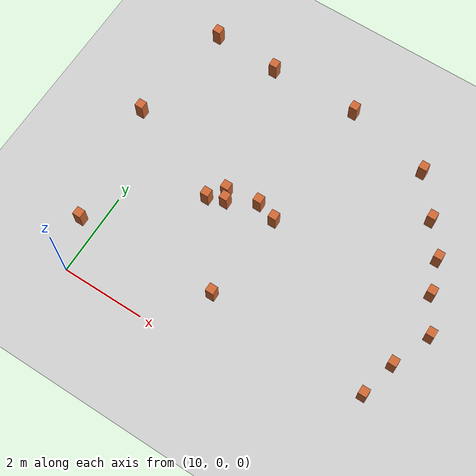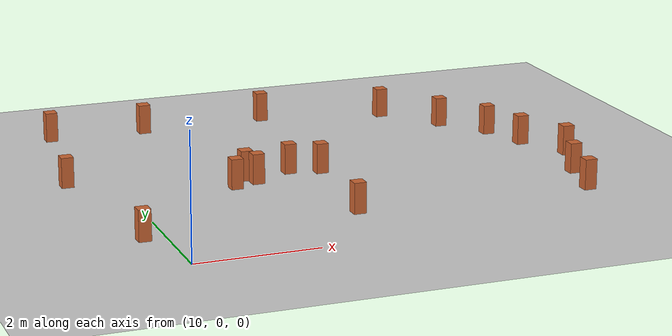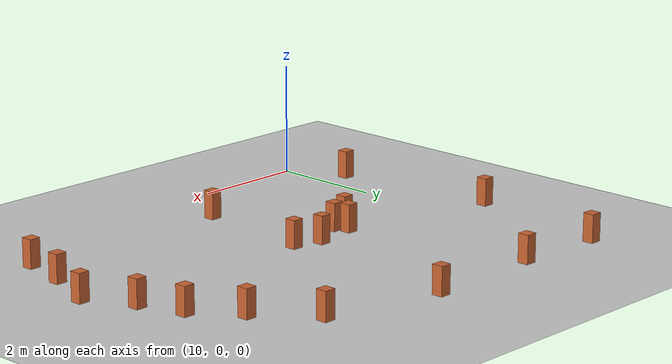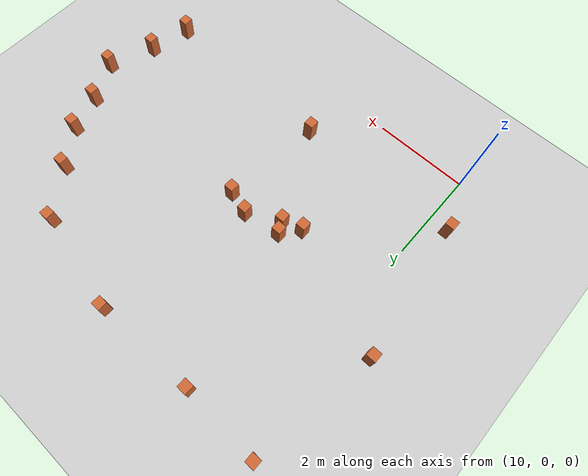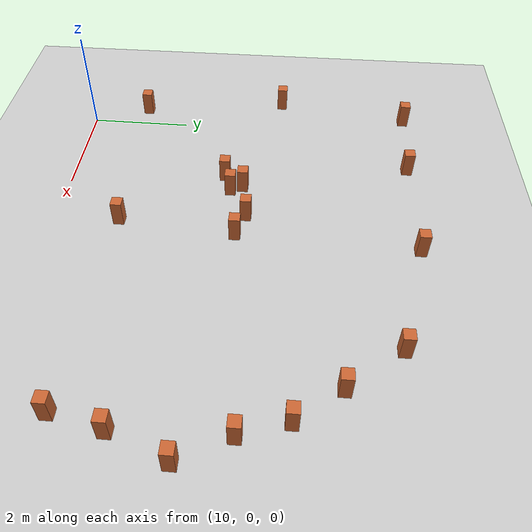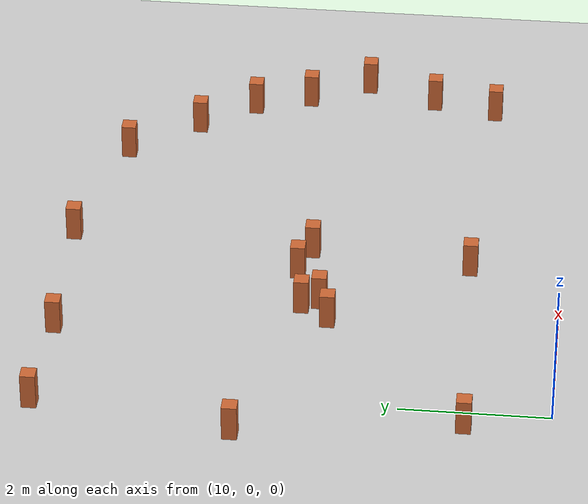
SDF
<sdf version="1.9">
 <world name="default">
  <model name="ground_plane">
   <static>true</static>
   <link name="link">
    <collision name="collision">
     <geometry><plane><normal>0 0 1</normal><size>100 100</size></plane></geometry>
     <surface><friction><ode><mu>100</mu><mu2>50</mu2></ode></friction></surface>
    </collision>
    <visual name="visual">
     <cast_shadows>false</cast_shadows>
     <geometry><plane><normal>0 0 1</normal><size>100 100</size></plane></geometry>
     <material>
      <ambient>0.6 0.6 0.6 1</ambient>
      <diffuse>0.8 0.8 0.8 1</diffuse>
      <specular>0.1 0.1 0.1 1</specular>
     </material>
    </visual>
    <inertial>
     <mass>1</mass>
     <inertia><ixx>1</ixx><ixy>0</ixy><ixz>0</ixz><iyy>1</iyy><iyz>0</iyz><izz>1</izz></inertia>
    </inertial>
   </link>
  </model>
  <model name="wood_cube_10cm_clone_0_clone_4_44_5">
   <link name="link">
    <pose>0 0 0.05 0 -0 0</pose>
    <inertial>
     <mass>0.51670000000000005</mass>
     <inertia>
      <ixx>0.00086116700000000003</ixx>
      <ixy>0</ixy>
      <ixz>0</ixz>
      <iyy>0.00086116700000000003</iyy>
      <iyz>0</iyz>
      <izz>0.00086116700000000003</izz>
     </inertia>
    </inertial>
    <collision name="collision">
     <geometry><box><size>0.2 0.2 0.5</size></box></geometry>
     <surface>
      <contact>
       <poissons_ratio>0.34699999999999998</poissons_ratio>
       <elastic_modulus>8800000000</elastic_modulus>
       <ode><kp>100000</kp><kd>100</kd><max_vel>100</max_vel><min_depth>0.001</min_depth></ode>
      </contact>
      <friction>
       <torsional>
        <coefficient>1</coefficient>
        <use_patch_radius>false</use_patch_radius>
        <surface_radius>0.01</surface_radius>
       </torsional>
      </friction>
     </surface>
    </collision>
    <visual name="visual">
     <geometry><box><size>0.2 0.2 0.5</size></box></geometry>
     <material>
      <ambient>0.6 0.3 0.1 1</ambient>
      <diffuse>0.8 0.4 0.2 1</diffuse>
      <specular>0.1 0.1 0.1 1</specular>
     </material>
    </visual>
   </link>
   <pose>9.60962 1.1263 0.249999 0 -0 0</pose>
   <static>false</static>
  </model>
  <model name="wood_cube_10cm_clone_0_clone_4_44_18">
   <link name="link">
    <pose>0 0 0.05 0 -0 0</pose>
    <inertial>
     <mass>0.51670000000000005</mass>
     <inertia>
      <ixx>0.00086116700000000003</ixx>
      <ixy>0</ixy>
      <ixz>0</ixz>
      <iyy>0.00086116700000000003</iyy>
      <iyz>0</iyz>
      <izz>0.00086116700000000003</izz>
     </inertia>
    </inertial>
    <collision name="collision">
     <geometry><box><size>0.2 0.2 0.5</size></box></geometry>
     <surface>
      <contact>
       <poissons_ratio>0.34699999999999998</poissons_ratio>
       <elastic_modulus>8800000000</elastic_modulus>
       <ode><kp>100000</kp><kd>100</kd><max_vel>100</max_vel><min_depth>0.001</min_depth></ode>
      </contact>
      <friction>
       <torsional>
        <coefficient>1</coefficient>
        <use_patch_radius>false</use_patch_radius>
        <surface_radius>0.01</surface_radius>
       </torsional>
      </friction>
     </surface>
    </collision>
    <visual name="visual">
     <geometry><box><size>0.2 0.2 0.5</size></box></geometry>
     <material>
      <ambient>0.6 0.3 0.1 1</ambient>
      <diffuse>0.8 0.4 0.2 1</diffuse>
      <specular>0.1 0.1 0.1 1</specular>
     </material>
    </visual>
   </link>
   <pose>9.6054 6.72716 0.249999 0 -0 0</pose>
   <static>false</static>
  </model>
  <model name="wood_cube_10cm_clone_0_clone_4_44_19">
   <link name="link">
    <pose>0 0 0.05 0 -0 0</pose>
    <inertial>
     <mass>0.51670000000000005</mass>
     <inertia>
      <ixx>0.00086116700000000003</ixx>
      <ixy>0</ixy>
      <ixz>0</ixz>
      <iyy>0.00086116700000000003</iyy>
      <iyz>0</iyz>
      <izz>0.00086116700000000003</izz>
     </inertia>
    </inertial>
    <collision name="collision">
     <geometry><box><size>0.2 0.2 0.5</size></box></geometry>
     <surface>
      <contact>
       <poissons_ratio>0.34699999999999998</poissons_ratio>
       <elastic_modulus>8800000000</elastic_modulus>
       <ode><kp>100000</kp><kd>100</kd><max_vel>100</max_vel><min_depth>0.001</min_depth></ode>
      </contact>
      <friction>
       <torsional>
        <coefficient>1</coefficient>
        <use_patch_radius>false</use_patch_radius>
        <surface_radius>0.01</surface_radius>
       </torsional>
      </friction>
     </surface>
    </collision>
    <visual name="visual">
     <geometry><box><size>0.2 0.2 0.5</size></box></geometry>
     <material>
      <ambient>0.6 0.3 0.1 1</ambient>
      <diffuse>0.8 0.4 0.2 1</diffuse>
      <specular>0.1 0.1 0.1 1</specular>
     </material>
    </visual>
   </link>
   <pose>11.2341 6.66289 0.249999 0 -0 0</pose>
   <static>false</static>
  </model>
  <model name="wood_cube_10cm_clone_0_clone_4_44_20">
   <link name="link">
    <pose>0 0 0.05 0 -0 0</pose>
    <inertial>
     <mass>0.51670000000000005</mass>
     <inertia>
      <ixx>0.00086116700000000003</ixx>
      <ixy>0</ixy>
      <ixz>0</ixz>
      <iyy>0.00086116700000000003</iyy>
      <iyz>0</iyz>
      <izz>0.00086116700000000003</izz>
     </inertia>
    </inertial>
    <collision name="collision">
     <geometry><box><size>0.2 0.2 0.5</size></box></geometry>
     <surface>
      <contact>
       <poissons_ratio>0.34699999999999998</poissons_ratio>
       <elastic_modulus>8800000000</elastic_modulus>
       <ode><kp>100000</kp><kd>100</kd><max_vel>100</max_vel><min_depth>0.001</min_depth></ode>
      </contact>
      <friction>
       <torsional>
        <coefficient>1</coefficient>
        <use_patch_radius>false</use_patch_radius>
        <surface_radius>0.01</surface_radius>
       </torsional>
      </friction>
     </surface>
    </collision>
    <visual name="visual">
     <geometry><box><size>0.2 0.2 0.5</size></box></geometry>
     <material>
      <ambient>0.6 0.3 0.1 1</ambient>
      <diffuse>0.8 0.4 0.2 1</diffuse>
      <specular>0.1 0.1 0.1 1</specular>
     </material>
    </visual>
   </link>
   <pose>13.394 6.71062 0.249999 0 -0 0</pose>
   <static>false</static>
  </model>
  <model name="wood_cube_10cm_clone_0_clone_4_44_21">
   <link name="link">
    <pose>0 0 0.05 0 -0 0</pose>
    <inertial>
     <mass>0.51670000000000005</mass>
     <inertia>
      <ixx>0.00086116700000000003</ixx>
      <ixy>0</ixy>
      <ixz>0</ixz>
      <iyy>0.00086116700000000003</iyy>
      <iyz>0</iyz>
      <izz>0.00086116700000000003</izz>
     </inertia>
    </inertial>
    <collision name="collision">
     <geometry><box><size>0.2 0.2 0.5</size></box></geometry>
     <surface>
      <contact>
       <poissons_ratio>0.34699999999999998</poissons_ratio>
       <elastic_modulus>8800000000</elastic_modulus>
       <ode><kp>100000</kp><kd>100</kd><max_vel>100</max_vel><min_depth>0.001</min_depth></ode>
      </contact>
      <friction>
       <torsional>
        <coefficient>1</coefficient>
        <use_patch_radius>false</use_patch_radius>
        <surface_radius>0.01</surface_radius>
       </torsional>
      </friction>
     </surface>
    </collision>
    <visual name="visual">
     <geometry><box><size>0.2 0.2 0.5</size></box></geometry>
     <material>
      <ambient>0.6 0.3 0.1 1</ambient>
      <diffuse>0.8 0.4 0.2 1</diffuse>
      <specular>0.1 0.1 0.1 1</specular>
     </material>
    </visual>
   </link>
   <pose>15.4845 6.23157 0.249999 0 -0 0</pose>
   <static>false</static>
  </model>
  <model name="wood_cube_10cm_clone_0_clone_4_44_22">
   <link name="link">
    <pose>0 0 0.05 0 -0 0</pose>
    <inertial>
     <mass>0.51670000000000005</mass>
     <inertia>
      <ixx>0.00086116700000000003</ixx>
      <ixy>0</ixy>
      <ixz>0</ixz>
      <iyy>0.00086116700000000003</iyy>
      <iyz>0</iyz>
      <izz>0.00086116700000000003</izz>
     </inertia>
    </inertial>
    <collision name="collision">
     <geometry><box><size>0.2 0.2 0.5</size></box></geometry>
     <surface>
      <contact>
       <poissons_ratio>0.34699999999999998</poissons_ratio>
       <elastic_modulus>8800000000</elastic_modulus>
       <ode><kp>100000</kp><kd>100</kd><max_vel>100</max_vel><min_depth>0.001</min_depth></ode>
      </contact>
      <friction>
       <torsional>
        <coefficient>1</coefficient>
        <use_patch_radius>false</use_patch_radius>
        <surface_radius>0.01</surface_radius>
       </torsional>
      </friction>
     </surface>
    </collision>
    <visual name="visual">
     <geometry><box><size>0.2 0.2 0.5</size></box></geometry>
     <material>
      <ambient>0.6 0.3 0.1 1</ambient>
      <diffuse>0.8 0.4 0.2 1</diffuse>
      <specular>0.1 0.1 0.1 1</specular>
     </material>
    </visual>
   </link>
   <pose>16.223 5.29784 0.249999 -0 0 -0</pose>
   <static>false</static>
  </model>
  <model name="wood_cube_10cm_clone_0_clone_4_44_23">
   <link name="link">
    <pose>0 0 0.05 0 -0 0</pose>
    <inertial>
     <mass>0.51670000000000005</mass>
     <inertia>
      <ixx>0.00086116700000000003</ixx>
      <ixy>0</ixy>
      <ixz>0</ixz>
      <iyy>0.00086116700000000003</iyy>
      <iyz>0</iyz>
      <izz>0.00086116700000000003</izz>
     </inertia>
    </inertial>
    <collision name="collision">
     <geometry><box><size>0.2 0.2 0.5</size></box></geometry>
     <surface>
      <contact>
       <poissons_ratio>0.34699999999999998</poissons_ratio>
       <elastic_modulus>8800000000</elastic_modulus>
       <ode><kp>100000</kp><kd>100</kd><max_vel>100</max_vel><min_depth>0.001</min_depth></ode>
      </contact>
      <friction>
       <torsional>
        <coefficient>1</coefficient>
        <use_patch_radius>false</use_patch_radius>
        <surface_radius>0.01</surface_radius>
       </torsional>
      </friction>
     </surface>
    </collision>
    <visual name="visual">
     <geometry><box><size>0.2 0.2 0.5</size></box></geometry>
     <material>
      <ambient>0.6 0.3 0.1 1</ambient>
      <diffuse>0.8 0.4 0.2 1</diffuse>
      <specular>0.1 0.1 0.1 1</specular>
     </material>
    </visual>
   </link>
   <pose>16.7938 4.54819 0.249999 -0 0 -0</pose>
   <static>false</static>
  </model>
  <model name="wood_cube_10cm_clone_0_clone_4_44_24">
   <link name="link">
    <pose>0 0 0.05 0 -0 0</pose>
    <inertial>
     <mass>0.51670000000000005</mass>
     <inertia>
      <ixx>0.00086116700000000003</ixx>
      <ixy>0</ixy>
      <ixz>0</ixz>
      <iyy>0.00086116700000000003</iyy>
      <iyz>0</iyz>
      <izz>0.00086116700000000003</izz>
     </inertia>
    </inertial>
    <collision name="collision">
     <geometry><box><size>0.2 0.2 0.5</size></box></geometry>
     <surface>
      <contact>
       <poissons_ratio>0.34699999999999998</poissons_ratio>
       <elastic_modulus>8800000000</elastic_modulus>
       <ode><kp>100000</kp><kd>100</kd><max_vel>100</max_vel><min_depth>0.001</min_depth></ode>
      </contact>
      <friction>
       <torsional>
        <coefficient>1</coefficient>
        <use_patch_radius>false</use_patch_radius>
        <surface_radius>0.01</surface_radius>
       </torsional>
      </friction>
     </surface>
    </collision>
    <visual name="visual">
     <geometry><box><size>0.2 0.2 0.5</size></box></geometry>
     <material>
      <ambient>0.6 0.3 0.1 1</ambient>
      <diffuse>0.8 0.4 0.2 1</diffuse>
      <specular>0.1 0.1 0.1 1</specular>
     </material>
    </visual>
   </link>
   <pose>17.0598 3.77017 0.249999 -0 0 -0</pose>
   <static>false</static>
  </model>
  <model name="wood_cube_10cm_clone_0_clone_4_44_25">
   <link name="link">
    <pose>0 0 0.05 0 -0 0</pose>
    <inertial>
     <mass>0.51670000000000005</mass>
     <inertia>
      <ixx>0.00086116700000000003</ixx>
      <ixy>0</ixy>
      <ixz>0</ixz>
      <iyy>0.00086116700000000003</iyy>
      <iyz>0</iyz>
      <izz>0.00086116700000000003</izz>
     </inertia>
    </inertial>
    <collision name="collision">
     <geometry><box><size>0.2 0.2 0.5</size></box></geometry>
     <surface>
      <contact>
       <poissons_ratio>0.34699999999999998</poissons_ratio>
       <elastic_modulus>8800000000</elastic_modulus>
       <ode><kp>100000</kp><kd>100</kd><max_vel>100</max_vel><min_depth>0.001</min_depth></ode>
      </contact>
      <friction>
       <torsional>
        <coefficient>1</coefficient>
        <use_patch_radius>false</use_patch_radius>
        <surface_radius>0.01</surface_radius>
       </torsional>
      </friction>
     </surface>
    </collision>
    <visual name="visual">
     <geometry><box><size>0.2 0.2 0.5</size></box></geometry>
     <material>
      <ambient>0.6 0.3 0.1 1</ambient>
      <diffuse>0.8 0.4 0.2 1</diffuse>
      <specular>0.1 0.1 0.1 1</specular>
     </material>
    </visual>
   </link>
   <pose>17.4948 2.94217 0.249999 -0 0 -0</pose>
   <static>false</static>
  </model>
  <model name="wood_cube_10cm_clone_0_clone_4_44_26">
   <link name="link">
    <pose>0 0 0.05 0 -0 0</pose>
    <inertial>
     <mass>0.51670000000000005</mass>
     <inertia>
      <ixx>0.00086116700000000003</ixx>
      <ixy>0</ixy>
      <ixz>0</ixz>
      <iyy>0.00086116700000000003</iyy>
      <iyz>0</iyz>
      <izz>0.00086116700000000003</izz>
     </inertia>
    </inertial>
    <collision name="collision">
     <geometry><box><size>0.2 0.2 0.5</size></box></geometry>
     <surface>
      <contact>
       <poissons_ratio>0.34699999999999998</poissons_ratio>
       <elastic_modulus>8800000000</elastic_modulus>
       <ode><kp>100000</kp><kd>100</kd><max_vel>100</max_vel><min_depth>0.001</min_depth></ode>
      </contact>
      <friction>
       <torsional>
        <coefficient>1</coefficient>
        <use_patch_radius>false</use_patch_radius>
        <surface_radius>0.01</surface_radius>
       </torsional>
      </friction>
     </surface>
    </collision>
    <visual name="visual">
     <geometry><box><size>0.2 0.2 0.5</size></box></geometry>
     <material>
      <ambient>0.6 0.3 0.1 1</ambient>
      <diffuse>0.8 0.4 0.2 1</diffuse>
      <specular>0.1 0.1 0.1 1</specular>
     </material>
    </visual>
   </link>
   <pose>17.1302 1.9701 0.249999 -0 0 -0</pose>
   <static>false</static>
  </model>
  <model name="wood_cube_10cm_clone_0_clone_4_44_27">
   <link name="link">
    <pose>0 0 0.05 0 -0 0</pose>
    <inertial>
     <mass>0.51670000000000005</mass>
     <inertia>
      <ixx>0.00086116700000000003</ixx>
      <ixy>0</ixy>
      <ixz>0</ixz>
      <iyy>0.00086116700000000003</iyy>
      <iyz>0</iyz>
      <izz>0.00086116700000000003</izz>
     </inertia>
    </inertial>
    <collision name="collision">
     <geometry><box><size>0.2 0.2 0.5</size></box></geometry>
     <surface>
      <contact>
       <poissons_ratio>0.34699999999999998</poissons_ratio>
       <elastic_modulus>8800000000</elastic_modulus>
       <ode><kp>100000</kp><kd>100</kd><max_vel>100</max_vel><min_depth>0.001</min_depth></ode>
      </contact>
      <friction>
       <torsional>
        <coefficient>1</coefficient>
        <use_patch_radius>false</use_patch_radius>
        <surface_radius>0.01</surface_radius>
       </torsional>
      </friction>
     </surface>
    </collision>
    <visual name="visual">
     <geometry><box><size>0.2 0.2 0.5</size></box></geometry>
     <material>
      <ambient>0.6 0.3 0.1 1</ambient>
      <diffuse>0.8 0.4 0.2 1</diffuse>
      <specular>0.1 0.1 0.1 1</specular>
     </material>
    </visual>
   </link>
   <pose>16.9316 1.0852 0.249999 -0 0 -0</pose>
   <static>false</static>
  </model>
  <model name="wood_cube_10cm_clone_0_clone_4_44_48">
   <link name="link">
    <pose>0 0 0.05 0 -0 0</pose>
    <inertial>
     <mass>0.51670000000000005</mass>
     <inertia>
      <ixx>0.00086116700000000003</ixx>
      <ixy>0</ixy>
      <ixz>0</ixz>
      <iyy>0.00086116700000000003</iyy>
      <iyz>0</iyz>
      <izz>0.00086116700000000003</izz>
     </inertia>
    </inertial>
    <collision name="collision">
     <geometry><box><size>0.2 0.2 0.5</size></box></geometry>
     <surface>
      <contact>
       <poissons_ratio>0.34699999999999998</poissons_ratio>
       <elastic_modulus>8800000000</elastic_modulus>
       <ode><kp>100000</kp><kd>100</kd><max_vel>100</max_vel><min_depth>0.001</min_depth></ode>
      </contact>
      <friction>
       <torsional>
        <coefficient>1</coefficient>
        <use_patch_radius>false</use_patch_radius>
        <surface_radius>0.01</surface_radius>
       </torsional>
      </friction>
     </surface>
    </collision>
    <visual name="visual">
     <geometry><box><size>0.2 0.2 0.5</size></box></geometry>
     <material>
      <ambient>0.6 0.3 0.1 1</ambient>
      <diffuse>0.8 0.4 0.2 1</diffuse>
      <specular>0.1 0.1 0.1 1</specular>
     </material>
    </visual>
   </link>
   <pose>9.20284 4.0814 0.249999 0 -0 0</pose>
   <static>false</static>
  </model>
  <model name="wood_cube_10cm_clone_0_clone_4_44_59">
   <link name="link">
    <pose>0 0 0.05 0 -0 0</pose>
    <inertial>
     <mass>0.51670000000000005</mass>
     <inertia>
      <ixx>0.00086116700000000003</ixx>
      <ixy>0</ixy>
      <ixz>0</ixz>
      <iyy>0.00086116700000000003</iyy>
      <iyz>0</iyz>
      <izz>0.00086116700000000003</izz>
     </inertia>
    </inertial>
    <collision name="collision">
     <geometry><box><size>0.2 0.2 0.5</size></box></geometry>
     <surface>
      <contact>
       <poissons_ratio>0.34699999999999998</poissons_ratio>
       <elastic_modulus>8800000000</elastic_modulus>
       <ode><kp>100000</kp><kd>100</kd><max_vel>100</max_vel><min_depth>0.001</min_depth></ode>
      </contact>
      <friction>
       <torsional>
        <coefficient>1</coefficient>
        <use_patch_radius>false</use_patch_radius>
        <surface_radius>0.01</surface_radius>
       </torsional>
      </friction>
     </surface>
    </collision>
    <visual name="visual">
     <geometry><box><size>0.2 0.2 0.5</size></box></geometry>
     <material>
      <ambient>0.6 0.3 0.1 1</ambient>
      <diffuse>0.8 0.4 0.2 1</diffuse>
      <specular>0.1 0.1 0.1 1</specular>
     </material>
    </visual>
   </link>
   <pose>12.7751 3.55553 0.249999 0 -0 0</pose>
   <static>false</static>
  </model>
  <model name="wood_cube_10cm_clone_0_clone_4_44_60">
   <link name="link">
    <pose>0 0 0.05 0 -0 0</pose>
    <inertial>
     <mass>0.51670000000000005</mass>
     <inertia>
      <ixx>0.00086116700000000003</ixx>
      <ixy>0</ixy>
      <ixz>0</ixz>
      <iyy>0.00086116700000000003</iyy>
      <iyz>0</iyz>
      <izz>0.00086116700000000003</izz>
     </inertia>
    </inertial>
    <collision name="collision">
     <geometry><box><size>0.2 0.2 0.5</size></box></geometry>
     <surface>
      <contact>
       <poissons_ratio>0.34699999999999998</poissons_ratio>
       <elastic_modulus>8800000000</elastic_modulus>
       <ode><kp>100000</kp><kd>100</kd><max_vel>100</max_vel><min_depth>0.001</min_depth></ode>
      </contact>
      <friction>
       <torsional>
        <coefficient>1</coefficient>
        <use_patch_radius>false</use_patch_radius>
        <surface_radius>0.01</surface_radius>
       </torsional>
      </friction>
     </surface>
    </collision>
    <visual name="visual">
     <geometry><box><size>0.2 0.2 0.5</size></box></geometry>
     <material>
      <ambient>0.6 0.3 0.1 1</ambient>
      <diffuse>0.8 0.4 0.2 1</diffuse>
      <specular>0.1 0.1 0.1 1</specular>
     </material>
    </visual>
   </link>
   <pose>13.2707 3.39803 0.249999 0 -0 0</pose>
   <static>false</static>
  </model>
  <model name="wood_cube_10cm_clone_0_clone_4_44_61">
   <link name="link">
    <pose>0 0 0.05 0 -0 0</pose>
    <inertial>
     <mass>0.51670000000000005</mass>
     <inertia>
      <ixx>0.00086116700000000003</ixx>
      <ixy>0</ixy>
      <ixz>0</ixz>
      <iyy>0.00086116700000000003</iyy>
      <iyz>0</iyz>
      <izz>0.00086116700000000003</izz>
     </inertia>
    </inertial>
    <collision name="collision">
     <geometry><box><size>0.2 0.2 0.5</size></box></geometry>
     <surface>
      <contact>
       <poissons_ratio>0.34699999999999998</poissons_ratio>
       <elastic_modulus>8800000000</elastic_modulus>
       <ode><kp>100000</kp><kd>100</kd><max_vel>100</max_vel><min_depth>0.001</min_depth></ode>
      </contact>
      <friction>
       <torsional>
        <coefficient>1</coefficient>
        <use_patch_radius>false</use_patch_radius>
        <surface_radius>0.01</surface_radius>
       </torsional>
      </friction>
     </surface>
    </collision>
    <visual name="visual">
     <geometry><box><size>0.2 0.2 0.5</size></box></geometry>
     <material>
      <ambient>0.6 0.3 0.1 1</ambient>
      <diffuse>0.8 0.4 0.2 1</diffuse>
      <specular>0.1 0.1 0.1 1</specular>
     </material>
    </visual>
   </link>
   <pose>12.1067 3.20404 0.249999 0 -0 0</pose>
   <static>false</static>
  </model>
  <model name="wood_cube_10cm_clone_0_clone_4_44_62">
   <link name="link">
    <pose>0 0 0.05 0 -0 0</pose>
    <inertial>
     <mass>0.51670000000000005</mass>
     <inertia>
      <ixx>0.00086116700000000003</ixx>
      <ixy>0</ixy>
      <ixz>0</ixz>
      <iyy>0.00086116700000000003</iyy>
      <iyz>0</iyz>
      <izz>0.00086116700000000003</izz>
     </inertia>
    </inertial>
    <collision name="collision">
     <geometry><box><size>0.2 0.2 0.5</size></box></geometry>
     <surface>
      <contact>
       <poissons_ratio>0.34699999999999998</poissons_ratio>
       <elastic_modulus>8800000000</elastic_modulus>
       <ode><kp>100000</kp><kd>100</kd><max_vel>100</max_vel><min_depth>0.001</min_depth></ode>
      </contact>
      <friction>
       <torsional>
        <coefficient>1</coefficient>
        <use_patch_radius>false</use_patch_radius>
        <surface_radius>0.01</surface_radius>
       </torsional>
      </friction>
     </surface>
    </collision>
    <visual name="visual">
     <geometry><box><size>0.2 0.2 0.5</size></box></geometry>
     <material>
      <ambient>0.6 0.3 0.1 1</ambient>
      <diffuse>0.8 0.4 0.2 1</diffuse>
      <specular>0.1 0.1 0.1 1</specular>
     </material>
    </visual>
   </link>
   <pose>11.7003 3.05949 0.249999 0 -0 0</pose>
   <static>false</static>
  </model>
  <model name="wood_cube_10cm_clone_0_clone_4_44_63">
   <link name="link">
    <pose>0 0 0.05 0 -0 0</pose>
    <inertial>
     <mass>0.51670000000000005</mass>
     <inertia>
      <ixx>0.00086116700000000003</ixx>
      <ixy>0</ixy>
      <ixz>0</ixz>
      <iyy>0.00086116700000000003</iyy>
      <iyz>0</iyz>
      <izz>0.00086116700000000003</izz>
     </inertia>
    </inertial>
    <collision name="collision">
     <geometry><box><size>0.2 0.2 0.5</size></box></geometry>
     <surface>
      <contact>
       <poissons_ratio>0.34699999999999998</poissons_ratio>
       <elastic_modulus>8800000000</elastic_modulus>
       <ode><kp>100000</kp><kd>100</kd><max_vel>100</max_vel><min_depth>0.001</min_depth></ode>
      </contact>
      <friction>
       <torsional>
        <coefficient>1</coefficient>
        <use_patch_radius>false</use_patch_radius>
        <surface_radius>0.01</surface_radius>
       </torsional>
      </friction>
     </surface>
    </collision>
    <visual name="visual">
     <geometry><box><size>0.2 0.2 0.5</size></box></geometry>
     <material>
      <ambient>0.6 0.3 0.1 1</ambient>
      <diffuse>0.8 0.4 0.2 1</diffuse>
      <specular>0.1 0.1 0.1 1</specular>
     </material>
    </visual>
   </link>
   <pose>11.9896 3.43358 0.249999 0 -0 0</pose>
   <static>false</static>
  </model>
  <model name="wood_cube_10cm_clone_0_clone_4_44_65">
   <link name="link">
    <pose>0 0 0.05 0 -0 0</pose>
    <inertial>
     <mass>0.51670000000000005</mass>
     <inertia>
      <ixx>0.00086116700000000003</ixx>
      <ixy>0</ixy>
      <ixz>0</ixz>
      <iyy>0.00086116700000000003</iyy>
      <iyz>0</iyz>
      <izz>0.00086116700000000003</izz>
     </inertia>
    </inertial>
    <collision name="collision">
     <geometry><box><size>0.2 0.2 0.5</size></box></geometry>
     <surface>
      <contact>
       <poissons_ratio>0.34699999999999998</poissons_ratio>
       <elastic_modulus>8800000000</elastic_modulus>
       <ode><kp>100000</kp><kd>100</kd><max_vel>100</max_vel><min_depth>0.001</min_depth></ode>
      </contact>
      <friction>
       <torsional>
        <coefficient>1</coefficient>
        <use_patch_radius>false</use_patch_radius>
        <surface_radius>0.01</surface_radius>
       </torsional>
      </friction>
     </surface>
    </collision>
    <visual name="visual">
     <geometry><box><size>0.2 0.2 0.5</size></box></geometry>
     <material>
      <ambient>0.6 0.3 0.1 1</ambient>
      <diffuse>0.8 0.4 0.2 1</diffuse>
      <specular>0.1 0.1 0.1 1</specular>
     </material>
    </visual>
   </link>
   <pose>13.0568 1.23166 0.249999 0 -0 0</pose>
   <static>false</static>
  </model>
 </world>
</sdf>
